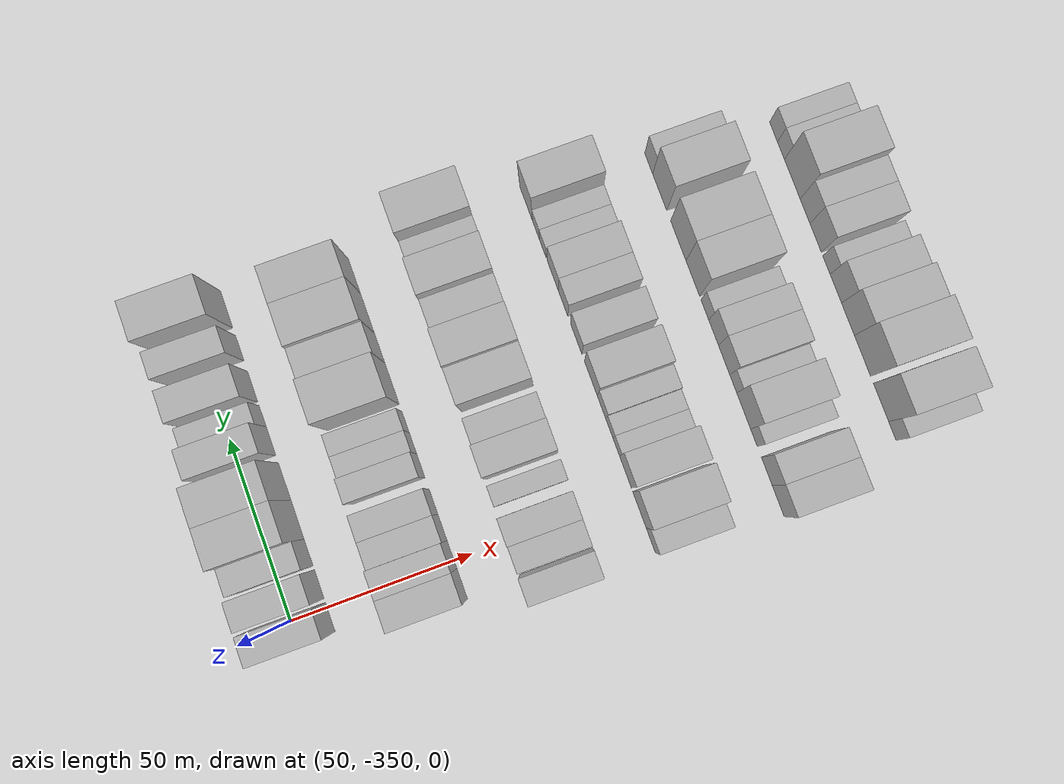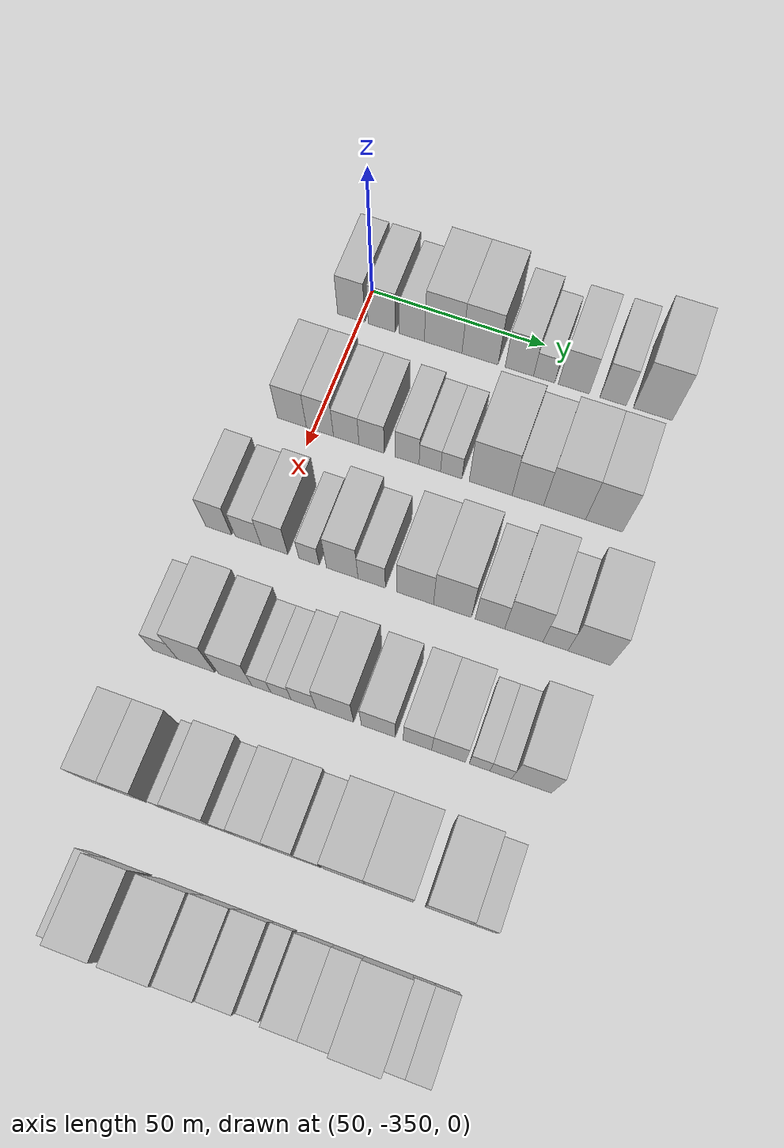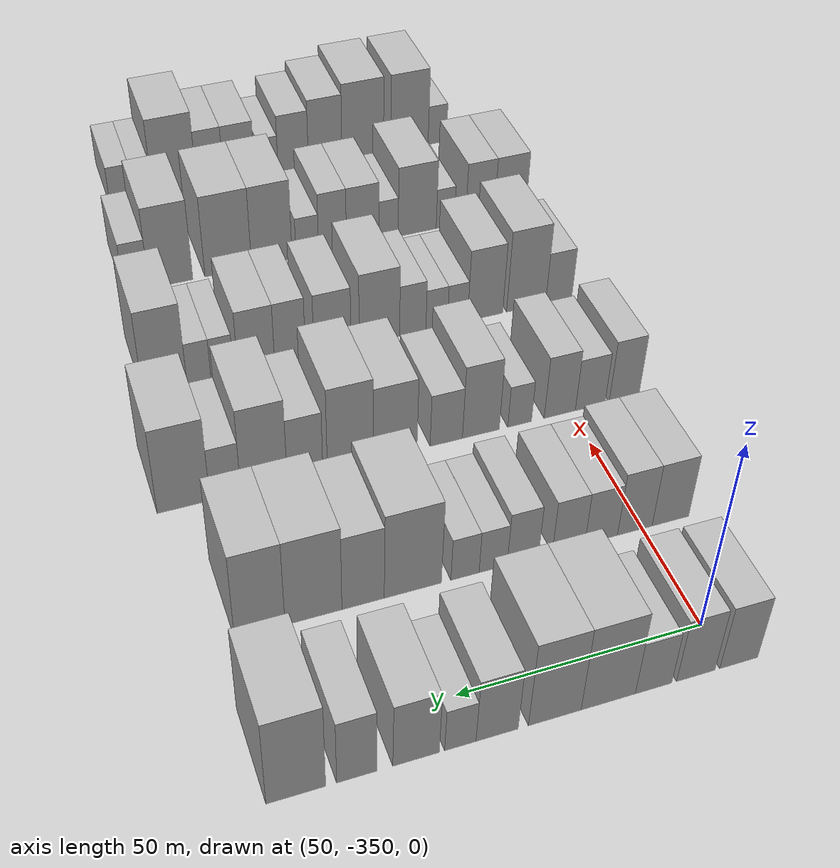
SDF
<sdf version="1.6">
 <world name="default">
  <model name="building_27">
   <static>1</static>
   <pose>50.0000 -352.5584 0 0.000000 0.000000 0.000000</pose>
   <link name="link">
    <pose>0 0 9.00 0 0 0</pose>
    <collision name="collision"><geometry><box><size>20.0000 7.9319 18.0000</size></box></geometry></collision>
    <visual name="visual">
     <cast_shadows>0</cast_shadows>
     <geometry><box><size>20.0000 7.9319 18.0000</size></box></geometry>
     <material>
      <script>
       <uri>model://HANNAS_wall/materials/scripts</uri>
       <uri>model://HANNAS_wall/materials/textures</uri>
       <name>vrc/HANNAS_wall</name>
      </script>
     </material>
    </visual>
   </link>
  </model>
  <model name="building_28">
   <static>1</static>
   <pose>50.0000 -343.6352 0 0.000000 0.000000 0.000000</pose>
   <link name="link">
    <pose>0 0 9.00 0 0 0</pose>
    <collision name="collision"><geometry><box><size>20.0000 7.9145 18.0000</size></box></geometry></collision>
    <visual name="visual">
     <cast_shadows>0</cast_shadows>
     <geometry><box><size>20.0000 7.9145 18.0000</size></box></geometry>
     <material>
      <script>
       <uri>model://HANNAS_wall/materials/scripts</uri>
       <uri>model://HANNAS_wall/materials/textures</uri>
       <name>vrc/HANNAS_wall</name>
      </script>
     </material>
    </visual>
   </link>
  </model>
  <model name="building_29">
   <static>1</static>
   <pose>50.0000 -334.9840 0 0.000000 0.000000 0.000000</pose>
   <link name="link">
    <pose>0 0 7.50 0 0 0</pose>
    <collision name="collision"><geometry><box><size>20.0000 7.3877 15.0000</size></box></geometry></collision>
    <visual name="visual">
     <cast_shadows>0</cast_shadows>
     <geometry><box><size>20.0000 7.3877 15.0000</size></box></geometry>
     <material>
      <script>
       <uri>model://HANNAS_wall/materials/scripts</uri>
       <uri>model://HANNAS_wall/materials/textures</uri>
       <name>vrc/HANNAS_wall</name>
      </script>
     </material>
    </visual>
   </link>
  </model>
  <model name="building_30">
   <static>1</static>
   <pose>50.0000 -325.8640 0 0.000000 0.000000 0.000000</pose>
   <link name="link">
    <pose>0 0 12.00 0 0 0</pose>
    <collision name="collision"><geometry><box><size>20.0000 10.8523 24.0000</size></box></geometry></collision>
    <visual name="visual">
     <cast_shadows>0</cast_shadows>
     <geometry><box><size>20.0000 10.8523 24.0000</size></box></geometry>
     <material>
      <script>
       <uri>model://HANNAS_wall/materials/scripts</uri>
       <uri>model://HANNAS_wall/materials/textures</uri>
       <name>vrc/HANNAS_wall</name>
      </script>
     </material>
    </visual>
   </link>
  </model>
  <model name="building_31">
   <static>1</static>
   <pose>50.0000 -315.2606 0 0.000000 0.000000 0.000000</pose>
   <link name="link">
    <pose>0 0 12.00 0 0 0</pose>
    <collision name="collision"><geometry><box><size>20.0000 10.3544 24.0000</size></box></geometry></collision>
    <visual name="visual">
     <cast_shadows>0</cast_shadows>
     <geometry><box><size>20.0000 10.3544 24.0000</size></box></geometry>
     <material>
      <script>
       <uri>model://HANNAS_wall/materials/scripts</uri>
       <uri>model://HANNAS_wall/materials/textures</uri>
       <name>vrc/HANNAS_wall</name>
      </script>
     </material>
    </visual>
   </link>
  </model>
  <model name="building_32">
   <static>1</static>
   <pose>50.0000 -304.0334 0 0.000000 0.000000 0.000000</pose>
   <link name="link">
    <pose>0 0 9.00 0 0 0</pose>
    <collision name="collision"><geometry><box><size>20.0000 8.0998 18.0000</size></box></geometry></collision>
    <visual name="visual">
     <cast_shadows>0</cast_shadows>
     <geometry><box><size>20.0000 8.0998 18.0000</size></box></geometry>
     <material>
      <script>
       <uri>model://HANNAS_wall/materials/scripts</uri>
       <uri>model://HANNAS_wall/materials/textures</uri>
       <name>vrc/HANNAS_wall</name>
      </script>
     </material>
    </visual>
   </link>
  </model>
  <model name="building_33">
   <static>1</static>
   <pose>50.0000 -297.0031 0 0.000000 0.000000 0.000000</pose>
   <link name="link">
    <pose>0 0 6.00 0 0 0</pose>
    <collision name="collision"><geometry><box><size>20.0000 5.9609 12.0000</size></box></geometry></collision>
    <visual name="visual">
     <cast_shadows>0</cast_shadows>
     <geometry><box><size>20.0000 5.9609 12.0000</size></box></geometry>
     <material>
      <script>
       <uri>model://HANNAS_wall/materials/scripts</uri>
       <uri>model://HANNAS_wall/materials/textures</uri>
       <name>vrc/HANNAS_wall</name>
      </script>
     </material>
    </visual>
   </link>
  </model>
  <model name="building_34">
   <static>1</static>
   <pose>50.0000 -288.6626 0 0.000000 0.000000 0.000000</pose>
   <link name="link">
    <pose>0 0 9.00 0 0 0</pose>
    <collision name="collision"><geometry><box><size>20.0000 8.7200 18.0000</size></box></geometry></collision>
    <visual name="visual">
     <cast_shadows>0</cast_shadows>
     <geometry><box><size>20.0000 8.7200 18.0000</size></box></geometry>
     <material>
      <script>
       <uri>model://HANNAS_wall/materials/scripts</uri>
       <uri>model://HANNAS_wall/materials/textures</uri>
       <name>vrc/HANNAS_wall</name>
      </script>
     </material>
    </visual>
   </link>
  </model>
  <model name="building_35">
   <static>1</static>
   <pose>50.0000 -277.6412 0 0.000000 0.000000 0.000000</pose>
   <link name="link">
    <pose>0 0 9.00 0 0 0</pose>
    <collision name="collision"><geometry><box><size>20.0000 7.3229 18.0000</size></box></geometry></collision>
    <visual name="visual">
     <cast_shadows>0</cast_shadows>
     <geometry><box><size>20.0000 7.3229 18.0000</size></box></geometry>
     <material>
      <script>
       <uri>model://HANNAS_wall/materials/scripts</uri>
       <uri>model://HANNAS_wall/materials/textures</uri>
       <name>vrc/HANNAS_wall</name>
      </script>
     </material>
    </visual>
   </link>
  </model>
  <model name="building_36">
   <static>1</static>
   <pose>50.0000 -266.6025 0 0.000000 0.000000 0.000000</pose>
   <link name="link">
    <pose>0 0 12.00 0 0 0</pose>
    <collision name="collision"><geometry><box><size>20.0000 10.7545 24.0000</size></box></geometry></collision>
    <visual name="visual">
     <cast_shadows>0</cast_shadows>
     <geometry><box><size>20.0000 10.7545 24.0000</size></box></geometry>
     <material>
      <script>
       <uri>model://HANNAS_wall/materials/scripts</uri>
       <uri>model://HANNAS_wall/materials/textures</uri>
       <name>vrc/HANNAS_wall</name>
      </script>
     </material>
    </visual>
   </link>
  </model>
  <model name="building_144">
   <static>1</static>
   <pose>85.0000 -356.2723 0 0.000000 0.000000 0.000000</pose>
   <link name="link">
    <pose>0 0 9.00 0 0 0</pose>
    <collision name="collision"><geometry><box><size>20.0000 8.2765 18.0000</size></box></geometry></collision>
    <visual name="visual">
     <cast_shadows>0</cast_shadows>
     <geometry><box><size>20.0000 8.2765 18.0000</size></box></geometry>
     <material>
      <script>
       <uri>model://HANNAS_wall/materials/scripts</uri>
       <uri>model://HANNAS_wall/materials/textures</uri>
       <name>vrc/HANNAS_wall</name>
      </script>
     </material>
    </visual>
   </link>
  </model>
  <model name="building_145">
   <static>1</static>
   <pose>85.0000 -348.2738 0 0.000000 0.000000 0.000000</pose>
   <link name="link">
    <pose>0 0 9.00 0 0 0</pose>
    <collision name="collision"><geometry><box><size>20.0000 7.7205 18.0000</size></box></geometry></collision>
    <visual name="visual">
     <cast_shadows>0</cast_shadows>
     <geometry><box><size>20.0000 7.7205 18.0000</size></box></geometry>
     <material>
      <script>
       <uri>model://HANNAS_wall/materials/scripts</uri>
       <uri>model://HANNAS_wall/materials/textures</uri>
       <name>vrc/HANNAS_wall</name>
      </script>
     </material>
    </visual>
   </link>
  </model>
  <model name="building_146">
   <static>1</static>
   <pose>85.0000 -340.8078 0 0.000000 0.000000 0.000000</pose>
   <link name="link">
    <pose>0 0 7.50 0 0 0</pose>
    <collision name="collision"><geometry><box><size>20.0000 7.2116 15.0000</size></box></geometry></collision>
    <visual name="visual">
     <cast_shadows>0</cast_shadows>
     <geometry><box><size>20.0000 7.2116 15.0000</size></box></geometry>
     <material>
      <script>
       <uri>model://HANNAS_wall/materials/scripts</uri>
       <uri>model://HANNAS_wall/materials/textures</uri>
       <name>vrc/HANNAS_wall</name>
      </script>
     </material>
    </visual>
   </link>
  </model>
  <model name="building_147">
   <static>1</static>
   <pose>85.0000 -333.6484 0 0.000000 0.000000 0.000000</pose>
   <link name="link">
    <pose>0 0 7.50 0 0 0</pose>
    <collision name="collision"><geometry><box><size>20.0000 7.1070 15.0000</size></box></geometry></collision>
    <visual name="visual">
     <cast_shadows>0</cast_shadows>
     <geometry><box><size>20.0000 7.1070 15.0000</size></box></geometry>
     <material>
      <script>
       <uri>model://HANNAS_wall/materials/scripts</uri>
       <uri>model://HANNAS_wall/materials/textures</uri>
       <name>vrc/HANNAS_wall</name>
      </script>
     </material>
    </visual>
   </link>
  </model>
  <model name="building_148">
   <static>1</static>
   <pose>85.0000 -323.7363 0 0.000000 0.000000 0.000000</pose>
   <link name="link">
    <pose>0 0 7.50 0 0 0</pose>
    <collision name="collision"><geometry><box><size>20.0000 6.7173 15.0000</size></box></geometry></collision>
    <visual name="visual">
     <cast_shadows>0</cast_shadows>
     <geometry><box><size>20.0000 6.7173 15.0000</size></box></geometry>
     <material>
      <script>
       <uri>model://HANNAS_wall/materials/scripts</uri>
       <uri>model://HANNAS_wall/materials/textures</uri>
       <name>vrc/HANNAS_wall</name>
      </script>
     </material>
    </visual>
   </link>
  </model>
  <model name="building_149">
   <static>1</static>
   <pose>85.0000 -317.3959 0 0.000000 0.000000 0.000000</pose>
   <link name="link">
    <pose>0 0 6.00 0 0 0</pose>
    <collision name="collision"><geometry><box><size>20.0000 5.9635 12.0000</size></box></geometry></collision>
    <visual name="visual">
     <cast_shadows>0</cast_shadows>
     <geometry><box><size>20.0000 5.9635 12.0000</size></box></geometry>
     <material>
      <script>
       <uri>model://HANNAS_wall/materials/scripts</uri>
       <uri>model://HANNAS_wall/materials/textures</uri>
       <name>vrc/HANNAS_wall</name>
      </script>
     </material>
    </visual>
   </link>
  </model>
  <model name="building_150">
   <static>1</static>
   <pose>85.0000 -311.4459 0 0.000000 0.000000 0.000000</pose>
   <link name="link">
    <pose>0 0 6.00 0 0 0</pose>
    <collision name="collision"><geometry><box><size>20.0000 5.9364 12.0000</size></box></geometry></collision>
    <visual name="visual">
     <cast_shadows>0</cast_shadows>
     <geometry><box><size>20.0000 5.9364 12.0000</size></box></geometry>
     <material>
      <script>
       <uri>model://HANNAS_wall/materials/scripts</uri>
       <uri>model://HANNAS_wall/materials/textures</uri>
       <name>vrc/HANNAS_wall</name>
      </script>
     </material>
    </visual>
   </link>
  </model>
  <model name="building_151">
   <static>1</static>
   <pose>85.0000 -300.5734 0 0.000000 0.000000 0.000000</pose>
   <link name="link">
    <pose>0 0 12.00 0 0 0</pose>
    <collision name="collision"><geometry><box><size>20.0000 11.8087 24.0000</size></box></geometry></collision>
    <visual name="visual">
     <cast_shadows>0</cast_shadows>
     <geometry><box><size>20.0000 11.8087 24.0000</size></box></geometry>
     <material>
      <script>
       <uri>model://HANNAS_wall/materials/scripts</uri>
       <uri>model://HANNAS_wall/materials/textures</uri>
       <name>vrc/HANNAS_wall</name>
      </script>
     </material>
    </visual>
   </link>
  </model>
  <model name="building_152">
   <static>1</static>
   <pose>85.0000 -290.3661 0 0.000000 0.000000 0.000000</pose>
   <link name="link">
    <pose>0 0 10.50 0 0 0</pose>
    <collision name="collision"><geometry><box><size>20.0000 8.6059 21.0000</size></box></geometry></collision>
    <visual name="visual">
     <cast_shadows>0</cast_shadows>
     <geometry><box><size>20.0000 8.6059 21.0000</size></box></geometry>
     <material>
      <script>
       <uri>model://HANNAS_wall/materials/scripts</uri>
       <uri>model://HANNAS_wall/materials/textures</uri>
       <name>vrc/HANNAS_wall</name>
      </script>
     </material>
    </visual>
   </link>
  </model>
  <model name="building_153">
   <static>1</static>
   <pose>85.0000 -280.3686 0 0.000000 0.000000 0.000000</pose>
   <link name="link">
    <pose>0 0 12.00 0 0 0</pose>
    <collision name="collision"><geometry><box><size>20.0000 11.3890 24.0000</size></box></geometry></collision>
    <visual name="visual">
     <cast_shadows>0</cast_shadows>
     <geometry><box><size>20.0000 11.3890 24.0000</size></box></geometry>
     <material>
      <script>
       <uri>model://HANNAS_wall/materials/scripts</uri>
       <uri>model://HANNAS_wall/materials/textures</uri>
       <name>vrc/HANNAS_wall</name>
      </script>
     </material>
    </visual>
   </link>
  </model>
  <model name="building_154">
   <static>1</static>
   <pose>85.0000 -269.6975 0 0.000000 0.000000 0.000000</pose>
   <link name="link">
    <pose>0 0 12.00 0 0 0</pose>
    <collision name="collision"><geometry><box><size>20.0000 9.9531 24.0000</size></box></geometry></collision>
    <visual name="visual">
     <cast_shadows>0</cast_shadows>
     <geometry><box><size>20.0000 9.9531 24.0000</size></box></geometry>
     <material>
      <script>
       <uri>model://HANNAS_wall/materials/scripts</uri>
       <uri>model://HANNAS_wall/materials/textures</uri>
       <name>vrc/HANNAS_wall</name>
      </script>
     </material>
    </visual>
   </link>
  </model>
  <model name="building_278">
   <static>1</static>
   <pose>120.0000 -362.7461 0 0.000000 0.000000 0.000000</pose>
   <link name="link">
    <pose>0 0 9.00 0 0 0</pose>
    <collision name="collision"><geometry><box><size>20.0000 7.2542 18.0000</size></box></geometry></collision>
    <visual name="visual">
     <cast_shadows>0</cast_shadows>
     <geometry><box><size>20.0000 7.2542 18.0000</size></box></geometry>
     <material>
      <script>
       <uri>model://HANNAS_wall/materials/scripts</uri>
       <uri>model://HANNAS_wall/materials/textures</uri>
       <name>vrc/HANNAS_wall</name>
      </script>
     </material>
    </visual>
   </link>
  </model>
  <model name="building_279">
   <static>1</static>
   <pose>120.0000 -354.5400 0 0.000000 0.000000 0.000000</pose>
   <link name="link">
    <pose>0 0 7.50 0 0 0</pose>
    <collision name="collision"><geometry><box><size>20.0000 7.1580 15.0000</size></box></geometry></collision>
    <visual name="visual">
     <cast_shadows>0</cast_shadows>
     <geometry><box><size>20.0000 7.1580 15.0000</size></box></geometry>
     <material>
      <script>
       <uri>model://HANNAS_wall/materials/scripts</uri>
       <uri>model://HANNAS_wall/materials/textures</uri>
       <name>vrc/HANNAS_wall</name>
      </script>
     </material>
    </visual>
   </link>
  </model>
  <model name="building_280">
   <static>1</static>
   <pose>120.0000 -347.2467 0 0.000000 0.000000 0.000000</pose>
   <link name="link">
    <pose>0 0 9.00 0 0 0</pose>
    <collision name="collision"><geometry><box><size>20.0000 7.4285 18.0000</size></box></geometry></collision>
    <visual name="visual">
     <cast_shadows>0</cast_shadows>
     <geometry><box><size>20.0000 7.4285 18.0000</size></box></geometry>
     <material>
      <script>
       <uri>model://HANNAS_wall/materials/scripts</uri>
       <uri>model://HANNAS_wall/materials/textures</uri>
       <name>vrc/HANNAS_wall</name>
      </script>
     </material>
    </visual>
   </link>
  </model>
  <model name="building_281">
   <static>1</static>
   <pose>120.0000 -337.7471 0 0.000000 0.000000 0.000000</pose>
   <link name="link">
    <pose>0 0 6.00 0 0 0</pose>
    <collision name="collision"><geometry><box><size>20.0000 5.5707 12.0000</size></box></geometry></collision>
    <visual name="visual">
     <cast_shadows>0</cast_shadows>
     <geometry><box><size>20.0000 5.5707 12.0000</size></box></geometry>
     <material>
      <script>
       <uri>model://HANNAS_wall/materials/scripts</uri>
       <uri>model://HANNAS_wall/materials/textures</uri>
       <name>vrc/HANNAS_wall</name>
      </script>
     </material>
    </visual>
   </link>
  </model>
  <model name="building_282">
   <static>1</static>
   <pose>120.0000 -328.6851 0 0.000000 0.000000 0.000000</pose>
   <link name="link">
    <pose>0 0 10.50 0 0 0</pose>
    <collision name="collision"><geometry><box><size>20.0000 8.5533 21.0000</size></box></geometry></collision>
    <visual name="visual">
     <cast_shadows>0</cast_shadows>
     <geometry><box><size>20.0000 8.5533 21.0000</size></box></geometry>
     <material>
      <script>
       <uri>model://HANNAS_wall/materials/scripts</uri>
       <uri>model://HANNAS_wall/materials/textures</uri>
       <name>vrc/HANNAS_wall</name>
      </script>
     </material>
    </visual>
   </link>
  </model>
  <model name="building_283">
   <static>1</static>
   <pose>120.0000 -320.6999 0 0.000000 0.000000 0.000000</pose>
   <link name="link">
    <pose>0 0 7.50 0 0 0</pose>
    <collision name="collision"><geometry><box><size>20.0000 7.4172 15.0000</size></box></geometry></collision>
    <visual name="visual">
     <cast_shadows>0</cast_shadows>
     <geometry><box><size>20.0000 7.4172 15.0000</size></box></geometry>
     <material>
      <script>
       <uri>model://HANNAS_wall/materials/scripts</uri>
       <uri>model://HANNAS_wall/materials/textures</uri>
       <name>vrc/HANNAS_wall</name>
      </script>
     </material>
    </visual>
   </link>
  </model>
  <model name="building_284">
   <static>1</static>
   <pose>120.0000 -309.0473 0 0.000000 0.000000 0.000000</pose>
   <link name="link">
    <pose>0 0 10.50 0 0 0</pose>
    <collision name="collision"><geometry><box><size>20.0000 9.8880 21.0000</size></box></geometry></collision>
    <visual name="visual">
     <cast_shadows>0</cast_shadows>
     <geometry><box><size>20.0000 9.8880 21.0000</size></box></geometry>
     <material>
      <script>
       <uri>model://HANNAS_wall/materials/scripts</uri>
       <uri>model://HANNAS_wall/materials/textures</uri>
       <name>vrc/HANNAS_wall</name>
      </script>
     </material>
    </visual>
   </link>
  </model>
  <model name="building_285">
   <static>1</static>
   <pose>120.0000 -299.0463 0 0.000000 0.000000 0.000000</pose>
   <link name="link">
    <pose>0 0 12.00 0 0 0</pose>
    <collision name="collision"><geometry><box><size>20.0000 10.1140 24.0000</size></box></geometry></collision>
    <visual name="visual">
     <cast_shadows>0</cast_shadows>
     <geometry><box><size>20.0000 10.1140 24.0000</size></box></geometry>
     <material>
      <script>
       <uri>model://HANNAS_wall/materials/scripts</uri>
       <uri>model://HANNAS_wall/materials/textures</uri>
       <name>vrc/HANNAS_wall</name>
      </script>
     </material>
    </visual>
   </link>
  </model>
  <model name="building_286">
   <static>1</static>
   <pose>120.0000 -289.1010 0 0.000000 0.000000 0.000000</pose>
   <link name="link">
    <pose>0 0 9.00 0 0 0</pose>
    <collision name="collision"><geometry><box><size>20.0000 7.7766 18.0000</size></box></geometry></collision>
    <visual name="visual">
     <cast_shadows>0</cast_shadows>
     <geometry><box><size>20.0000 7.7766 18.0000</size></box></geometry>
     <material>
      <script>
       <uri>model://HANNAS_wall/materials/scripts</uri>
       <uri>model://HANNAS_wall/materials/textures</uri>
       <name>vrc/HANNAS_wall</name>
      </script>
     </material>
    </visual>
   </link>
  </model>
  <model name="building_287">
   <static>1</static>
   <pose>120.0000 -280.1980 0 0.000000 0.000000 0.000000</pose>
   <link name="link">
    <pose>0 0 12.00 0 0 0</pose>
    <collision name="collision"><geometry><box><size>20.0000 10.0293 24.0000</size></box></geometry></collision>
    <visual name="visual">
     <cast_shadows>0</cast_shadows>
     <geometry><box><size>20.0000 10.0293 24.0000</size></box></geometry>
     <material>
      <script>
       <uri>model://HANNAS_wall/materials/scripts</uri>
       <uri>model://HANNAS_wall/materials/textures</uri>
       <name>vrc/HANNAS_wall</name>
      </script>
     </material>
    </visual>
   </link>
  </model>
  <model name="building_288">
   <static>1</static>
   <pose>120.0000 -271.8969 0 0.000000 0.000000 0.000000</pose>
   <link name="link">
    <pose>0 0 7.50 0 0 0</pose>
    <collision name="collision"><geometry><box><size>20.0000 6.5730 15.0000</size></box></geometry></collision>
    <visual name="visual">
     <cast_shadows>0</cast_shadows>
     <geometry><box><size>20.0000 6.5730 15.0000</size></box></geometry>
     <material>
      <script>
       <uri>model://HANNAS_wall/materials/scripts</uri>
       <uri>model://HANNAS_wall/materials/textures</uri>
       <name>vrc/HANNAS_wall</name>
      </script>
     </material>
    </visual>
   </link>
  </model>
  <model name="building_289">
   <static>1</static>
   <pose>120.0000 -263.0574 0 0.000000 0.000000 0.000000</pose>
   <link name="link">
    <pose>0 0 12.00 0 0 0</pose>
    <collision name="collision"><geometry><box><size>20.0000 11.1058 24.0000</size></box></geometry></collision>
    <visual name="visual">
     <cast_shadows>0</cast_shadows>
     <geometry><box><size>20.0000 11.1058 24.0000</size></box></geometry>
     <material>
      <script>
       <uri>model://HANNAS_wall/materials/scripts</uri>
       <uri>model://HANNAS_wall/materials/textures</uri>
       <name>vrc/HANNAS_wall</name>
      </script>
     </material>
    </visual>
   </link>
  </model>
  <model name="building_407">
   <static>1</static>
   <pose>155.0000 -362.4932 0 0.000000 0.000000 0.000000</pose>
   <link name="link">
    <pose>0 0 7.50 0 0 0</pose>
    <collision name="collision"><geometry><box><size>20.0000 6.7795 15.0000</size></box></geometry></collision>
    <visual name="visual">
     <cast_shadows>0</cast_shadows>
     <geometry><box><size>20.0000 6.7795 15.0000</size></box></geometry>
     <material>
      <script>
       <uri>model://HANNAS_wall/materials/scripts</uri>
       <uri>model://HANNAS_wall/materials/textures</uri>
       <name>vrc/HANNAS_wall</name>
      </script>
     </material>
    </visual>
   </link>
  </model>
  <model name="building_408">
   <static>1</static>
   <pose>155.0000 -354.0987 0 0.000000 0.000000 0.000000</pose>
   <link name="link">
    <pose>0 0 12.00 0 0 0</pose>
    <collision name="collision"><geometry><box><size>20.0000 10.0094 24.0000</size></box></geometry></collision>
    <visual name="visual">
     <cast_shadows>0</cast_shadows>
     <geometry><box><size>20.0000 10.0094 24.0000</size></box></geometry>
     <material>
      <script>
       <uri>model://HANNAS_wall/materials/scripts</uri>
       <uri>model://HANNAS_wall/materials/textures</uri>
       <name>vrc/HANNAS_wall</name>
      </script>
     </material>
    </visual>
   </link>
  </model>
  <model name="building_409">
   <static>1</static>
   <pose>155.0000 -343.6483 0 0.000000 0.000000 0.000000</pose>
   <link name="link">
    <pose>0 0 10.50 0 0 0</pose>
    <collision name="collision"><geometry><box><size>20.0000 8.8915 21.0000</size></box></geometry></collision>
    <visual name="visual">
     <cast_shadows>0</cast_shadows>
     <geometry><box><size>20.0000 8.8915 21.0000</size></box></geometry>
     <material>
      <script>
       <uri>model://HANNAS_wall/materials/scripts</uri>
       <uri>model://HANNAS_wall/materials/textures</uri>
       <name>vrc/HANNAS_wall</name>
      </script>
     </material>
    </visual>
   </link>
  </model>
  <model name="building_410">
   <static>1</static>
   <pose>155.0000 -336.6921 0 0.000000 0.000000 0.000000</pose>
   <link name="link">
    <pose>0 0 6.00 0 0 0</pose>
    <collision name="collision"><geometry><box><size>20.0000 5.0209 12.0000</size></box></geometry></collision>
    <visual name="visual">
     <cast_shadows>0</cast_shadows>
     <geometry><box><size>20.0000 5.0209 12.0000</size></box></geometry>
     <material>
      <script>
       <uri>model://HANNAS_wall/materials/scripts</uri>
       <uri>model://HANNAS_wall/materials/textures</uri>
       <name>vrc/HANNAS_wall</name>
      </script>
     </material>
    </visual>
   </link>
  </model>
  <model name="building_411">
   <static>1</static>
   <pose>155.0000 -331.4851 0 0.000000 0.000000 0.000000</pose>
   <link name="link">
    <pose>0 0 6.00 0 0 0</pose>
    <collision name="collision"><geometry><box><size>20.0000 5.3929 12.0000</size></box></geometry></collision>
    <visual name="visual">
     <cast_shadows>0</cast_shadows>
     <geometry><box><size>20.0000 5.3929 12.0000</size></box></geometry>
     <material>
      <script>
       <uri>model://HANNAS_wall/materials/scripts</uri>
       <uri>model://HANNAS_wall/materials/textures</uri>
       <name>vrc/HANNAS_wall</name>
      </script>
     </material>
    </visual>
   </link>
  </model>
  <model name="building_412">
   <static>1</static>
   <pose>155.0000 -325.5354 0 0.000000 0.000000 0.000000</pose>
   <link name="link">
    <pose>0 0 7.50 0 0 0</pose>
    <collision name="collision"><geometry><box><size>20.0000 6.5066 15.0000</size></box></geometry></collision>
    <visual name="visual">
     <cast_shadows>0</cast_shadows>
     <geometry><box><size>20.0000 6.5066 15.0000</size></box></geometry>
     <material>
      <script>
       <uri>model://HANNAS_wall/materials/scripts</uri>
       <uri>model://HANNAS_wall/materials/textures</uri>
       <name>vrc/HANNAS_wall</name>
      </script>
     </material>
    </visual>
   </link>
  </model>
  <model name="building_413">
   <static>1</static>
   <pose>155.0000 -317.3658 0 0.000000 0.000000 0.000000</pose>
   <link name="link">
    <pose>0 0 10.50 0 0 0</pose>
    <collision name="collision"><geometry><box><size>20.0000 9.8326 21.0000</size></box></geometry></collision>
    <visual name="visual">
     <cast_shadows>0</cast_shadows>
     <geometry><box><size>20.0000 9.8326 21.0000</size></box></geometry>
     <material>
      <script>
       <uri>model://HANNAS_wall/materials/scripts</uri>
       <uri>model://HANNAS_wall/materials/textures</uri>
       <name>vrc/HANNAS_wall</name>
      </script>
     </material>
    </visual>
   </link>
  </model>
  <model name="building_414">
   <static>1</static>
   <pose>155.0000 -306.0286 0 0.000000 0.000000 0.000000</pose>
   <link name="link">
    <pose>0 0 9.00 0 0 0</pose>
    <collision name="collision"><geometry><box><size>20.0000 8.8418 18.0000</size></box></geometry></collision>
    <visual name="visual">
     <cast_shadows>0</cast_shadows>
     <geometry><box><size>20.0000 8.8418 18.0000</size></box></geometry>
     <material>
      <script>
       <uri>model://HANNAS_wall/materials/scripts</uri>
       <uri>model://HANNAS_wall/materials/textures</uri>
       <name>vrc/HANNAS_wall</name>
      </script>
     </material>
    </visual>
   </link>
  </model>
  <model name="building_415">
   <static>1</static>
   <pose>155.0000 -295.9625 0 0.000000 0.000000 0.000000</pose>
   <link name="link">
    <pose>0 0 9.00 0 0 0</pose>
    <collision name="collision"><geometry><box><size>20.0000 7.2903 18.0000</size></box></geometry></collision>
    <visual name="visual">
     <cast_shadows>0</cast_shadows>
     <geometry><box><size>20.0000 7.2903 18.0000</size></box></geometry>
     <material>
      <script>
       <uri>model://HANNAS_wall/materials/scripts</uri>
       <uri>model://HANNAS_wall/materials/textures</uri>
       <name>vrc/HANNAS_wall</name>
      </script>
     </material>
    </visual>
   </link>
  </model>
  <model name="building_416">
   <static>1</static>
   <pose>155.0000 -288.0004 0 0.000000 0.000000 0.000000</pose>
   <link name="link">
    <pose>0 0 9.00 0 0 0</pose>
    <collision name="collision"><geometry><box><size>20.0000 8.6339 18.0000</size></box></geometry></collision>
    <visual name="visual">
     <cast_shadows>0</cast_shadows>
     <geometry><box><size>20.0000 8.6339 18.0000</size></box></geometry>
     <material>
      <script>
       <uri>model://HANNAS_wall/materials/scripts</uri>
       <uri>model://HANNAS_wall/materials/textures</uri>
       <name>vrc/HANNAS_wall</name>
      </script>
     </material>
    </visual>
   </link>
  </model>
  <model name="building_417">
   <static>1</static>
   <pose>155.0000 -280.0767 0 0.000000 0.000000 0.000000</pose>
   <link name="link">
    <pose>0 0 6.00 0 0 0</pose>
    <collision name="collision"><geometry><box><size>20.0000 5.2135 12.0000</size></box></geometry></collision>
    <visual name="visual">
     <cast_shadows>0</cast_shadows>
     <geometry><box><size>20.0000 5.2135 12.0000</size></box></geometry>
     <material>
      <script>
       <uri>model://HANNAS_wall/materials/scripts</uri>
       <uri>model://HANNAS_wall/materials/textures</uri>
       <name>vrc/HANNAS_wall</name>
      </script>
     </material>
    </visual>
   </link>
  </model>
  <model name="building_418">
   <static>1</static>
   <pose>155.0000 -274.7063 0 0.000000 0.000000 0.000000</pose>
   <link name="link">
    <pose>0 0 6.00 0 0 0</pose>
    <collision name="collision"><geometry><box><size>20.0000 5.5273 12.0000</size></box></geometry></collision>
    <visual name="visual">
     <cast_shadows>0</cast_shadows>
     <geometry><box><size>20.0000 5.5273 12.0000</size></box></geometry>
     <material>
      <script>
       <uri>model://HANNAS_wall/materials/scripts</uri>
       <uri>model://HANNAS_wall/materials/textures</uri>
       <name>vrc/HANNAS_wall</name>
      </script>
     </material>
    </visual>
   </link>
  </model>
  <model name="building_419">
   <static>1</static>
   <pose>155.0000 -266.9055 0 0.000000 0.000000 0.000000</pose>
   <link name="link">
    <pose>0 0 12.00 0 0 0</pose>
    <collision name="collision"><geometry><box><size>20.0000 10.0743 24.0000</size></box></geometry></collision>
    <visual name="visual">
     <cast_shadows>0</cast_shadows>
     <geometry><box><size>20.0000 10.0743 24.0000</size></box></geometry>
     <material>
      <script>
       <uri>model://HANNAS_wall/materials/scripts</uri>
       <uri>model://HANNAS_wall/materials/textures</uri>
       <name>vrc/HANNAS_wall</name>
      </script>
     </material>
    </visual>
   </link>
  </model>
  <model name="building_533">
   <static>1</static>
   <pose>190.0000 -364.4861 0 0.000000 0.000000 0.000000</pose>
   <link name="link">
    <pose>0 0 9.00 0 0 0</pose>
    <collision name="collision"><geometry><box><size>20.0000 8.6706 18.0000</size></box></geometry></collision>
    <visual name="visual">
     <cast_shadows>0</cast_shadows>
     <geometry><box><size>20.0000 8.6706 18.0000</size></box></geometry>
     <material>
      <script>
       <uri>model://HANNAS_wall/materials/scripts</uri>
       <uri>model://HANNAS_wall/materials/textures</uri>
       <name>vrc/HANNAS_wall</name>
      </script>
     </material>
    </visual>
   </link>
  </model>
  <model name="building_534">
   <static>1</static>
   <pose>190.0000 -356.2161 0 0.000000 0.000000 0.000000</pose>
   <link name="link">
    <pose>0 0 9.00 0 0 0</pose>
    <collision name="collision"><geometry><box><size>20.0000 7.8694 18.0000</size></box></geometry></collision>
    <visual name="visual">
     <cast_shadows>0</cast_shadows>
     <geometry><box><size>20.0000 7.8694 18.0000</size></box></geometry>
     <material>
      <script>
       <uri>model://HANNAS_wall/materials/scripts</uri>
       <uri>model://HANNAS_wall/materials/textures</uri>
       <name>vrc/HANNAS_wall</name>
      </script>
     </material>
    </visual>
   </link>
  </model>
  <model name="building_535">
   <static>1</static>
   <pose>190.0000 -346.8158 0 0.000000 0.000000 0.000000</pose>
   <link name="link">
    <pose>0 0 6.00 0 0 0</pose>
    <collision name="collision"><geometry><box><size>20.0000 4.9311 12.0000</size></box></geometry></collision>
    <visual name="visual">
     <cast_shadows>0</cast_shadows>
     <geometry><box><size>20.0000 4.9311 12.0000</size></box></geometry>
     <material>
      <script>
       <uri>model://HANNAS_wall/materials/scripts</uri>
       <uri>model://HANNAS_wall/materials/textures</uri>
       <name>vrc/HANNAS_wall</name>
      </script>
     </material>
    </visual>
   </link>
  </model>
  <model name="building_536">
   <static>1</static>
   <pose>190.0000 -339.2591 0 0.000000 0.000000 0.000000</pose>
   <link name="link">
    <pose>0 0 10.50 0 0 0</pose>
    <collision name="collision"><geometry><box><size>20.0000 10.1823 21.0000</size></box></geometry></collision>
    <visual name="visual">
     <cast_shadows>0</cast_shadows>
     <geometry><box><size>20.0000 10.1823 21.0000</size></box></geometry>
     <material>
      <script>
       <uri>model://HANNAS_wall/materials/scripts</uri>
       <uri>model://HANNAS_wall/materials/textures</uri>
       <name>vrc/HANNAS_wall</name>
      </script>
     </material>
    </visual>
   </link>
  </model>
  <model name="building_537">
   <static>1</static>
   <pose>190.0000 -331.6128 0 0.000000 0.000000 0.000000</pose>
   <link name="link">
    <pose>0 0 6.00 0 0 0</pose>
    <collision name="collision"><geometry><box><size>20.0000 5.1104 12.0000</size></box></geometry></collision>
    <visual name="visual">
     <cast_shadows>0</cast_shadows>
     <geometry><box><size>20.0000 5.1104 12.0000</size></box></geometry>
     <material>
      <script>
       <uri>model://HANNAS_wall/materials/scripts</uri>
       <uri>model://HANNAS_wall/materials/textures</uri>
       <name>vrc/HANNAS_wall</name>
      </script>
     </material>
    </visual>
   </link>
  </model>
  <model name="building_538">
   <static>1</static>
   <pose>190.0000 -324.8269 0 0.000000 0.000000 0.000000</pose>
   <link name="link">
    <pose>0 0 9.00 0 0 0</pose>
    <collision name="collision"><geometry><box><size>20.0000 8.4614 18.0000</size></box></geometry></collision>
    <visual name="visual">
     <cast_shadows>0</cast_shadows>
     <geometry><box><size>20.0000 8.4614 18.0000</size></box></geometry>
     <material>
      <script>
       <uri>model://HANNAS_wall/materials/scripts</uri>
       <uri>model://HANNAS_wall/materials/textures</uri>
       <name>vrc/HANNAS_wall</name>
      </script>
     </material>
    </visual>
   </link>
  </model>
  <model name="building_539">
   <static>1</static>
   <pose>190.0000 -316.9925 0 0.000000 0.000000 0.000000</pose>
   <link name="link">
    <pose>0 0 9.00 0 0 0</pose>
    <collision name="collision"><geometry><box><size>20.0000 7.2073 18.0000</size></box></geometry></collision>
    <visual name="visual">
     <cast_shadows>0</cast_shadows>
     <geometry><box><size>20.0000 7.2073 18.0000</size></box></geometry>
     <material>
      <script>
       <uri>model://HANNAS_wall/materials/scripts</uri>
       <uri>model://HANNAS_wall/materials/textures</uri>
       <name>vrc/HANNAS_wall</name>
      </script>
     </material>
    </visual>
   </link>
  </model>
  <model name="building_540">
   <static>1</static>
   <pose>190.0000 -310.4767 0 0.000000 0.000000 0.000000</pose>
   <link name="link">
    <pose>0 0 6.00 0 0 0</pose>
    <collision name="collision"><geometry><box><size>20.0000 5.8243 12.0000</size></box></geometry></collision>
    <visual name="visual">
     <cast_shadows>0</cast_shadows>
     <geometry><box><size>20.0000 5.8243 12.0000</size></box></geometry>
     <material>
      <script>
       <uri>model://HANNAS_wall/materials/scripts</uri>
       <uri>model://HANNAS_wall/materials/textures</uri>
       <name>vrc/HANNAS_wall</name>
      </script>
     </material>
    </visual>
   </link>
  </model>
  <model name="building_541">
   <static>1</static>
   <pose>190.0000 -301.4223 0 0.000000 0.000000 0.000000</pose>
   <link name="link">
    <pose>0 0 12.00 0 0 0</pose>
    <collision name="collision"><geometry><box><size>20.0000 10.2846 24.0000</size></box></geometry></collision>
    <visual name="visual">
     <cast_shadows>0</cast_shadows>
     <geometry><box><size>20.0000 10.2846 24.0000</size></box></geometry>
     <material>
      <script>
       <uri>model://HANNAS_wall/materials/scripts</uri>
       <uri>model://HANNAS_wall/materials/textures</uri>
       <name>vrc/HANNAS_wall</name>
      </script>
     </material>
    </visual>
   </link>
  </model>
  <model name="building_542">
   <static>1</static>
   <pose>190.0000 -290.4349 0 0.000000 0.000000 0.000000</pose>
   <link name="link">
    <pose>0 0 12.00 0 0 0</pose>
    <collision name="collision"><geometry><box><size>20.0000 11.6901 24.0000</size></box></geometry></collision>
    <visual name="visual">
     <cast_shadows>0</cast_shadows>
     <geometry><box><size>20.0000 11.6901 24.0000</size></box></geometry>
     <material>
      <script>
       <uri>model://HANNAS_wall/materials/scripts</uri>
       <uri>model://HANNAS_wall/materials/textures</uri>
       <name>vrc/HANNAS_wall</name>
      </script>
     </material>
    </visual>
   </link>
  </model>
  <model name="building_543">
   <static>1</static>
   <pose>190.0000 -276.2061 0 0.000000 0.000000 0.000000</pose>
   <link name="link">
    <pose>0 0 12.00 0 0 0</pose>
    <collision name="collision"><geometry><box><size>20.0000 10.7675 24.0000</size></box></geometry></collision>
    <visual name="visual">
     <cast_shadows>0</cast_shadows>
     <geometry><box><size>20.0000 10.7675 24.0000</size></box></geometry>
     <material>
      <script>
       <uri>model://HANNAS_wall/materials/scripts</uri>
       <uri>model://HANNAS_wall/materials/textures</uri>
       <name>vrc/HANNAS_wall</name>
      </script>
     </material>
    </visual>
   </link>
  </model>
  <model name="building_544">
   <static>1</static>
   <pose>190.0000 -267.7437 0 0.000000 0.000000 0.000000</pose>
   <link name="link">
    <pose>0 0 7.50 0 0 0</pose>
    <collision name="collision"><geometry><box><size>20.0000 6.1573 15.0000</size></box></geometry></collision>
    <visual name="visual">
     <cast_shadows>0</cast_shadows>
     <geometry><box><size>20.0000 6.1573 15.0000</size></box></geometry>
     <material>
      <script>
       <uri>model://HANNAS_wall/materials/scripts</uri>
       <uri>model://HANNAS_wall/materials/textures</uri>
       <name>vrc/HANNAS_wall</name>
      </script>
     </material>
    </visual>
   </link>
  </model>
  <model name="building_659">
   <static>1</static>
   <pose>225.0000 -357.6603 0 0.000000 0.000000 0.000000</pose>
   <link name="link">
    <pose>0 0 6.00 0 0 0</pose>
    <collision name="collision"><geometry><box><size>20.0000 5.3073 12.0000</size></box></geometry></collision>
    <visual name="visual">
     <cast_shadows>0</cast_shadows>
     <geometry><box><size>20.0000 5.3073 12.0000</size></box></geometry>
     <material>
      <script>
       <uri>model://HANNAS_wall/materials/scripts</uri>
       <uri>model://HANNAS_wall/materials/textures</uri>
       <name>vrc/HANNAS_wall</name>
      </script>
     </material>
    </visual>
   </link>
  </model>
  <model name="building_660">
   <static>1</static>
   <pose>225.0000 -349.6202 0 0.000000 0.000000 0.000000</pose>
   <link name="link">
    <pose>0 0 12.00 0 0 0</pose>
    <collision name="collision"><geometry><box><size>20.0000 10.7730 24.0000</size></box></geometry></collision>
    <visual name="visual">
     <cast_shadows>0</cast_shadows>
     <geometry><box><size>20.0000 10.7730 24.0000</size></box></geometry>
     <material>
      <script>
       <uri>model://HANNAS_wall/materials/scripts</uri>
       <uri>model://HANNAS_wall/materials/textures</uri>
       <name>vrc/HANNAS_wall</name>
      </script>
     </material>
    </visual>
   </link>
  </model>
  <model name="building_661">
   <static>1</static>
   <pose>225.0000 -336.3973 0 0.000000 0.000000 0.000000</pose>
   <link name="link">
    <pose>0 0 12.00 0 0 0</pose>
    <collision name="collision"><geometry><box><size>20.0000 11.6728 24.0000</size></box></geometry></collision>
    <visual name="visual">
     <cast_shadows>0</cast_shadows>
     <geometry><box><size>20.0000 11.6728 24.0000</size></box></geometry>
     <material>
      <script>
       <uri>model://HANNAS_wall/materials/scripts</uri>
       <uri>model://HANNAS_wall/materials/textures</uri>
       <name>vrc/HANNAS_wall</name>
      </script>
     </material>
    </visual>
   </link>
  </model>
  <model name="building_662">
   <static>1</static>
   <pose>225.0000 -325.9180 0 0.000000 0.000000 0.000000</pose>
   <link name="link">
    <pose>0 0 10.50 0 0 0</pose>
    <collision name="collision"><geometry><box><size>20.0000 9.2858 21.0000</size></box></geometry></collision>
    <visual name="visual">
     <cast_shadows>0</cast_shadows>
     <geometry><box><size>20.0000 9.2858 21.0000</size></box></geometry>
     <material>
      <script>
       <uri>model://HANNAS_wall/materials/scripts</uri>
       <uri>model://HANNAS_wall/materials/textures</uri>
       <name>vrc/HANNAS_wall</name>
      </script>
     </material>
    </visual>
   </link>
  </model>
  <model name="building_663">
   <static>1</static>
   <pose>225.0000 -317.1126 0 0.000000 0.000000 0.000000</pose>
   <link name="link">
    <pose>0 0 9.00 0 0 0</pose>
    <collision name="collision"><geometry><box><size>20.0000 8.3248 18.0000</size></box></geometry></collision>
    <visual name="visual">
     <cast_shadows>0</cast_shadows>
     <geometry><box><size>20.0000 8.3248 18.0000</size></box></geometry>
     <material>
      <script>
       <uri>model://HANNAS_wall/materials/scripts</uri>
       <uri>model://HANNAS_wall/materials/textures</uri>
       <name>vrc/HANNAS_wall</name>
      </script>
     </material>
    </visual>
   </link>
  </model>
  <model name="building_664">
   <static>1</static>
   <pose>225.0000 -310.2710 0 0.000000 0.000000 0.000000</pose>
   <link name="link">
    <pose>0 0 6.00 0 0 0</pose>
    <collision name="collision"><geometry><box><size>20.0000 5.3585 12.0000</size></box></geometry></collision>
    <visual name="visual">
     <cast_shadows>0</cast_shadows>
     <geometry><box><size>20.0000 5.3585 12.0000</size></box></geometry>
     <material>
      <script>
       <uri>model://HANNAS_wall/materials/scripts</uri>
       <uri>model://HANNAS_wall/materials/textures</uri>
       <name>vrc/HANNAS_wall</name>
      </script>
     </material>
    </visual>
   </link>
  </model>
  <model name="building_665">
   <static>1</static>
   <pose>225.0000 -302.3921 0 0.000000 0.000000 0.000000</pose>
   <link name="link">
    <pose>0 0 9.00 0 0 0</pose>
    <collision name="collision"><geometry><box><size>20.0000 8.3992 18.0000</size></box></geometry></collision>
    <visual name="visual">
     <cast_shadows>0</cast_shadows>
     <geometry><box><size>20.0000 8.3992 18.0000</size></box></geometry>
     <material>
      <script>
       <uri>model://HANNAS_wall/materials/scripts</uri>
       <uri>model://HANNAS_wall/materials/textures</uri>
       <name>vrc/HANNAS_wall</name>
      </script>
     </material>
    </visual>
   </link>
  </model>
  <model name="building_666">
   <static>1</static>
   <pose>225.0000 -294.5827 0 0.000000 0.000000 0.000000</pose>
   <link name="link">
    <pose>0 0 9.00 0 0 0</pose>
    <collision name="collision"><geometry><box><size>20.0000 7.2197 18.0000</size></box></geometry></collision>
    <visual name="visual">
     <cast_shadows>0</cast_shadows>
     <geometry><box><size>20.0000 7.2197 18.0000</size></box></geometry>
     <material>
      <script>
       <uri>model://HANNAS_wall/materials/scripts</uri>
       <uri>model://HANNAS_wall/materials/textures</uri>
       <name>vrc/HANNAS_wall</name>
      </script>
     </material>
    </visual>
   </link>
  </model>
  <model name="building_667">
   <static>1</static>
   <pose>225.0000 -285.1218 0 0.000000 0.000000 0.000000</pose>
   <link name="link">
    <pose>0 0 12.00 0 0 0</pose>
    <collision name="collision"><geometry><box><size>20.0000 11.7020 24.0000</size></box></geometry></collision>
    <visual name="visual">
     <cast_shadows>0</cast_shadows>
     <geometry><box><size>20.0000 11.7020 24.0000</size></box></geometry>
     <material>
      <script>
       <uri>model://HANNAS_wall/materials/scripts</uri>
       <uri>model://HANNAS_wall/materials/textures</uri>
       <name>vrc/HANNAS_wall</name>
      </script>
     </material>
    </visual>
   </link>
  </model>
  <model name="building_668">
   <static>1</static>
   <pose>225.0000 -276.6790 0 0.000000 0.000000 0.000000</pose>
   <link name="link">
    <pose>0 0 6.00 0 0 0</pose>
    <collision name="collision"><geometry><box><size>20.0000 5.1837 12.0000</size></box></geometry></collision>
    <visual name="visual">
     <cast_shadows>0</cast_shadows>
     <geometry><box><size>20.0000 5.1837 12.0000</size></box></geometry>
     <material>
      <script>
       <uri>model://HANNAS_wall/materials/scripts</uri>
       <uri>model://HANNAS_wall/materials/textures</uri>
       <name>vrc/HANNAS_wall</name>
      </script>
     </material>
    </visual>
   </link>
  </model>
  <model name="building_669">
   <static>1</static>
   <pose>225.0000 -271.1157 0 0.000000 0.000000 0.000000</pose>
   <link name="link">
    <pose>0 0 6.00 0 0 0</pose>
    <collision name="collision"><geometry><box><size>20.0000 5.9428 12.0000</size></box></geometry></collision>
    <visual name="visual">
     <cast_shadows>0</cast_shadows>
     <geometry><box><size>20.0000 5.9428 12.0000</size></box></geometry>
     <material>
      <script>
       <uri>model://HANNAS_wall/materials/scripts</uri>
       <uri>model://HANNAS_wall/materials/textures</uri>
       <name>vrc/HANNAS_wall</name>
      </script>
     </material>
    </visual>
   </link>
  </model>
 </world>
</sdf>
